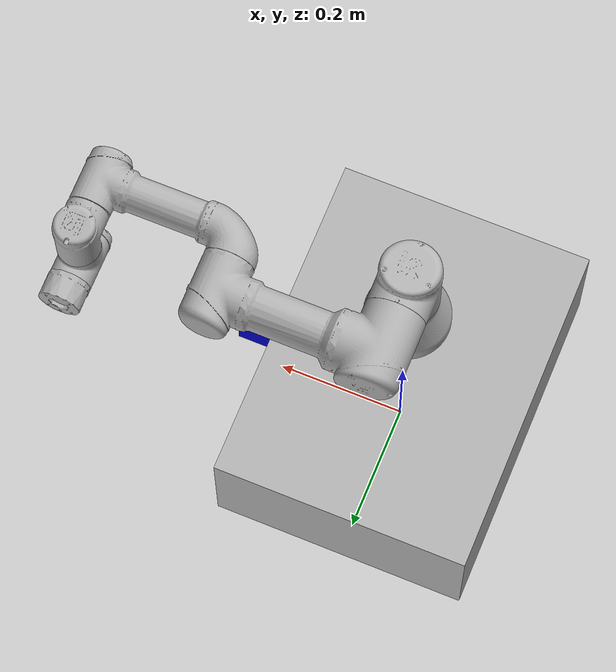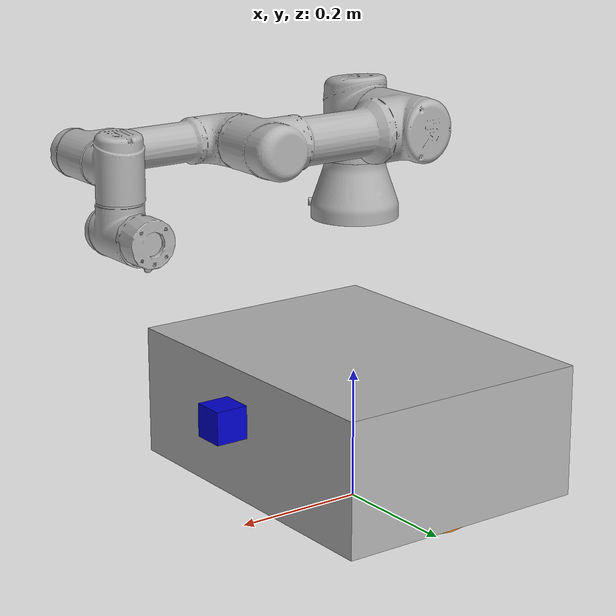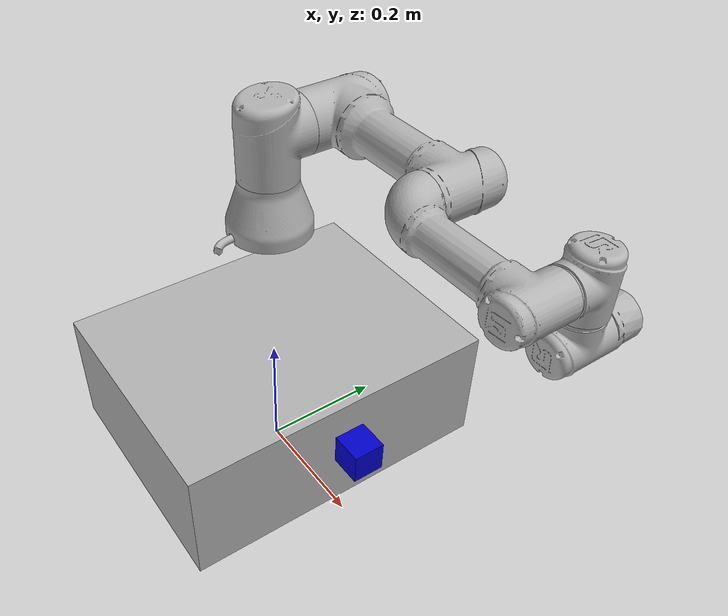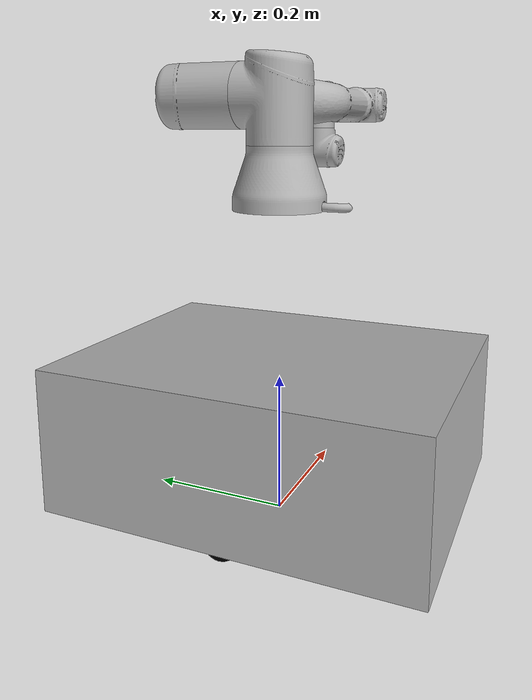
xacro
<?xml version="1.0"?>
<robot name="differential_wheeled_robot" xmlns:xacro="http://www.ros.org/wiki/xacro">

  <xacro:include filename="$(find dashur_description)/urdf/dashgo_wheel.xacro" />
	<xacro:include filename="$(find dashur_description)/urdf/ur3_arm.xacro" />

<!-- Defining the colors used in this robot -->
  <material name="Black">
    <color rgba="0.0 0.0 0.0 1.0"/>
  </material>

  <material name="Red">
    <color rgba="0.8 0.0 0.0 1.0"/>
  </material>

  <material name="White">
    <color rgba="1.0 1.0 1.0 1.0"/>
  </material>

  <material name="Blue">
    <color rgba="0.0 0.0 0.8 1.0"/>
  </material>

  <material name="Orange">
    <color rgba="1.0 0.55 0.0 1.0"/>
  </material>

  <material name="Grey">
    <color rgba="0.7 0.7 0.7 1.0"/>
  </material>

  <!-- PROPERTY LIST -->
  <!--All units in m-kg-s-radians unit system -->
	<property name="base_x" value="0.40" />
	<property name="base_y" value="0.52" />
	<property name="base_length" value="0.20" />
  <property name="M_PI" value="3.1415926535897931" />
  <property name="M_PI_2" value="1.570796327" />
  <property name="DEG_TO_RAD" value="0.017453293" />

  <!-- Main body radius and height -->
  <!-- Main Body Cylinder base   -->
  <property name="base_height" value="0.02" />
  <property name="base_radius" value="0.15" />
  <property name="base_mass" value="5" /> <!-- in kg-->

  <!-- caster wheel radius and height -->
  <!-- caster wheel mass -->
  <property name="caster_f_height" value="0.04" />
  <property name="caster_f_radius" value="0.025" />
  <property name="caster_f_mass" value="0.5" /> <!-- in kg-->

  <!-- caster wheel radius and height -->
  <!-- caster wheel mass -->
  <property name="caster_b_height" value="0.04" />
  <property name="caster_b_radius" value="0.025" />
  <property name="caster_b_mass" value="0.5" /> <!-- in kg-->

  <!-- Wheels -->

  <property name="wheel_mass" value="2.5" /> --> <!-- in kg-->

  <property name="base_x_origin_to_wheel_origin" value="0" />
  <property name="base_y_origin_to_wheel_origin" value="0.21" />
  <property name="base_z_origin_to_wheel_origin" value="-0.038" />

  <!-- Hokuyo Laser scanner -->
  <property name="hokuyo_size" value="0.05" />

  <!-- Macro for calculating inertia of cylinder -->
  <macro name="cylinder_inertia" params="m r h">
    <inertia  ixx="${m*(3*r*r+h*h)/12}" ixy = "0" ixz = "0"
              iyy="${m*(3*r*r+h*h)/12}" iyz = "0"
              izz="${m*r*r/2}" />
  </macro>

  <!-- BASE-FOOTPRINT -->
  <!-- base_footprint is a fictitious link(frame) that is on the ground right below dash_link origin -->
  <link name="base_footprint">
    <inertial>
      <mass value="0.0001" />
      <origin xyz="0 0 0" />
      <inertia ixx="0.001" ixy="0.0" ixz="0.0"
          iyy="0.001" iyz="0.0"
          izz="0.002" />
    </inertial>
    <visual>
        <origin xyz="0 0 0" rpy="0 0 0" />
        <geometry>
            <box size="0.05 0.05 0.001" />
        </geometry>
    </visual>
  </link>

  <gazebo reference="base_footprint">
    <turnGravityOff>false</turnGravityOff>
  </gazebo>

  <joint name="base_footprint_joint" type="fixed">
		<origin xyz="0 0 ${base_length/2 - base_z_origin_to_wheel_origin}" rpy="0 0 0" />
    <parent link="base_footprint"/>
    <child link="dash_link" />
  </joint>

  <!-- BASE-LINK -->
  <!--Actual body/chassis of the robot-->
  <link name="dash_link">
    <inertial>
      <mass value="${base_mass}" />
      <origin xyz="0 0 0" />
      <!--The 3x3 rotational inertia matrix. -->
      <inertia ixx="0.13" ixy="0.0" ixz="0.0"
          iyy="0.083" iyz="0.0"
          izz="0.18" />

    </inertial>
    <visual>
      <origin xyz="0 0 0" rpy="0 0 0" />
      <geometry>
					<box size="${base_x} ${base_y} ${base_length}"/>
      </geometry>
			<material name="Grey" />
    </visual>
    <collision>
      <origin xyz="0 0 0" rpy="0 0 0 " />
      <geometry>

					<box size="${base_x} ${base_y} ${base_length}"/>

      </geometry>
    </collision>
  </link>
  <gazebo reference="dash_link">
    <material>PR2/Grey1</material>
    <turnGravityOff>false</turnGravityOff>
  </gazebo>

<!--Caster front  -->

    <link name="caster_front_link">

    <visual>
      <origin xyz="0 0 0" rpy="${M_PI/2} 0 0" />
      <geometry>
	<sphere radius="${caster_f_radius}" />
      </geometry>
      <material name="Black" />
    </visual>

      <collision>
        <geometry>

	<sphere radius="${caster_f_radius}" />

        </geometry>
			<material name="Black" />
      <origin xyz="0 0 0" rpy="${M_PI/2} 0 0" />
      </collision>
      <inertial>
        <mass value="${caster_f_mass}" />
        <origin xyz="0 0 0" />
        <inertia ixx="0.001" ixy="0.0" ixz="0.0"
                 iyy="0.001" iyz="0.0"
                 izz="0.001" />
      </inertial>
    </link>

 <joint name="caster_front_joint" type="fixed">
      <parent link="dash_link"/>
      <child link="caster_front_link"/>
      <origin xyz="0.155 0.0 -0.093" rpy="${-M_PI/2} 0 0"/>
    </joint>

  <gazebo reference="caster_front_link">
    <turnGravityOff>false</turnGravityOff>
    <material>Gazebo/Black</material>
  </gazebo>

<!--Caster back  -->

    <link name="caster_back_link">

    <visual>
      <origin xyz="0 0 0 " rpy="${M_PI/2} 0 0" />

      <geometry>

	<sphere radius="${caster_b_radius}" />

      </geometry>
      <material name="Black" />
    </visual>

      <collision>
        <geometry>
		<sphere radius="${caster_b_radius}" />
        </geometry>
      <origin xyz="0 0 0 " rpy="${M_PI/2} 0 0" />
      </collision>
      <inertial>
        <mass value="${caster_b_mass}" />
        <origin xyz="0 0 0" />
        <inertia ixx="0.001" ixy="0.0" ixz="0.0"
                 iyy="0.001" iyz="0.0"
                 izz="0.001" />
      </inertial>
    </link>

    <joint name="caster_back_joint" type="fixed">
      <parent link="dash_link"/>
      <child link="caster_back_link"/>
      <origin xyz="-0.175 0.0 -0.093" rpy="${-M_PI/2} 0 0"/>
    </joint>

  <gazebo reference="caster_back_link">
    <turnGravityOff>false</turnGravityOff>
    <material>Gazebo/Black</material>
  </gazebo>

<!-- Wheel Definitions -->

  <wheel fb="front" lr="right" parent="dash_link" translateX="0" translateY="1" flipY="1"/>
  <wheel fb="front" lr="left" parent="dash_link" translateX="0" translateY="-1" flipY="1"/>

  <!-- SENSORS -->

  <!-- hokuyo -->

  <link name="hokuyo_link">
    <visual>
      <origin xyz="0 0 0" rpy="0 0 0" />
      <geometry>
        <box size="${hokuyo_size} ${hokuyo_size} ${hokuyo_size}"/>
      </geometry>
      <material name="Blue" />
    </visual>
  </link>
  <joint name="hokuyo_joint" type="fixed">
		<origin xyz="${base_y/2 - hokuyo_size/2} 0 ${base_height+hokuyo_size/4}" rpy="0 0 0" />
    <parent link="dash_link"/>
    <child link="hokuyo_link" />
  </joint>
  <gazebo reference="hokuyo_link">
    <material>Gazebo/Blue</material>
    <turnGravityOff>false</turnGravityOff>
    <sensor type="ray" name="head_hokuyo_sensor">
      <pose>${hokuyo_size/2} 0 0 0 0 0</pose>
      <visualize>false</visualize>
      <update_rate>40</update_rate>
      <ray>
        <scan>
          <horizontal>
            <samples>720</samples>
            <resolution>1</resolution>
            <min_angle>-1.570796</min_angle>
            <max_angle>1.570796</max_angle>
          </horizontal>
        </scan>
        <range>
          <min>0.10</min>
          <max>10.0</max>
          <resolution>0.001</resolution>
        </range>
      </ray>
      <plugin name="gazebo_ros_head_hokuyo_controller" filename="libgazebo_ros_laser.so">
        <topicName>/scan</topicName>
        <frameName>hokuyo_link</frameName>
      </plugin>
    </sensor>
  </gazebo>

  <!-- Differential drive controller  -->
  <gazebo>
    <plugin name="differential_drive_controller" filename="libgazebo_ros_diff_drive.so">

      <rosDebugLevel>Debug</rosDebugLevel>
      <publishWheelTF>false</publishWheelTF>
      <robotNamespace>/</robotNamespace>
      <publishTf>1</publishTf>
      <publishWheelJointState>false</publishWheelJointState>
      <alwaysOn>true</alwaysOn>
      <updateRate>100.0</updateRate>
      <leftJoint>front_left_wheel_joint</leftJoint>
      <rightJoint>front_right_wheel_joint</rightJoint>
      <wheelSeparation>${2*base_radius}</wheelSeparation>
      <wheelDiameter>${2*wheel_radius}</wheelDiameter>
      <broadcastTF>1</broadcastTF>
      <wheelTorque>30</wheelTorque>
      <wheelAcceleration>1.8</wheelAcceleration>
      <commandTopic>cmd_vel</commandTopic>
      <odometryFrame>odom</odometryFrame>
      <odometryTopic>odom</odometryTopic>
      <robotBaseFrame>base_footprint</robotBaseFrame>

    </plugin>
  </gazebo>

</robot>

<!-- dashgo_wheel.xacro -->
<robot name="wheel" xmlns:xacro="http://www.ros.org/wiki/xacro">

  <!-- Wheels -->
  <property name="wheel_radius" value="0.0801" />
  <property name="wheel_height" value="0.046" />
  <property name="wheel_mass" value="2.5" /> <!-- in kg-->

  <property name="base_x_origin_to_wheel_origin" value="0" />
  <property name="base_y_origin_to_wheel_origin" value="0.21" />
  <property name="base_z_origin_to_wheel_origin" value="-0.038" />

  <macro name="cylinder_inertia" params="m r h">
    <inertia  ixx="${m*(3*r*r+h*h)/12}" ixy = "0" ixz = "0"
              iyy="${m*(3*r*r+h*h)/12}" iyz = "0"
              izz="${m*r*r/2}" />
  </macro>

  <macro name="box_inertia" params="m x y h">
    <inertia  ixx="${m*(y*y+h*h)/12}" ixy = "0" ixz = "0"
              iyy="${m*(x*x+h*h)/12}" iyz = "0"
              izz="${m*(x*x+y*y)/12}" />
  </macro>

  <xacro:macro name="wheel" params="fb lr parent translateX translateY flipY"> <!--fb : front, back ; lr: left, right -->
    <link name="${fb}_${lr}_wheel">
      <visual>
        <origin xyz="0 0 0" rpy="${flipY*M_PI/2} 0  0 " />
        <geometry>
          <cylinder length="${wheel_height}" radius="${wheel_radius}" />
        </geometry>
        <material name="Orange" />
      </visual>
      <collision>
        <origin xyz="0 0 0" rpy="${flipY*M_PI/2} 0 0 " />
        <geometry>
          <cylinder length="${wheel_height}" radius="${wheel_radius}" />
        </geometry>
      </collision>
      <inertial>
        <mass value="${wheel_mass}" />
        <origin xyz="0 0 0" />
        <cylinder_inertia  m="${wheel_mass}" r="${wheel_radius}" h="${wheel_height}" />
      </inertial>
    </link>

    <gazebo reference="${fb}_${lr}_wheel">
      <mu1 value="1.0"/>
      <mu2 value="1.0"/>
      <kp  value="10000000.0" />
      <kd  value="1.0" />
      <fdir1 value="1 0 0"/>
      <material>Gazebo/Orange</material>
      <turnGravityOff>false</turnGravityOff>
    </gazebo>

    <joint name="${fb}_${lr}_wheel_joint" type="continuous">
      <parent link="${parent}"/>
      <child link="${fb}_${lr}_wheel"/>
      <origin xyz="${base_x_origin_to_wheel_origin} ${translateY * base_y_origin_to_wheel_origin} ${base_z_origin_to_wheel_origin}" rpy="0 0 0" />
      <axis xyz="0 1 0" rpy="0  0" />
      <limit effort="100" velocity="100"/>
      <joint_properties damping="0.0" friction="0.0"/>
    </joint>

    <!-- Transmission is important to link the joints and the controller -->
    <transmission name="${fb}_${lr}_wheel_joint_trans">
      <type>transmission_interface/SimpleTransmission</type>
      <joint name="${fb}_${lr}_wheel_joint" />
      <actuator name="${fb}_${lr}_wheel_joint_motor">
        <hardwareInterface>EffortJointInterface</hardwareInterface>
        <mechanicalReduction>1</mechanicalReduction>
      </actuator>
    </transmission>

  </xacro:macro>
</robot>

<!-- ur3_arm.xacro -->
<robot xmlns:xacro="http://www.ros.org/wiki/xacro">

  <!-- common stuff -->
	<xacro:include filename="$(find ur_description)/urdf/common.gazebo.xacro" />

  <!-- ur3 -->
  <xacro:include filename="$(find dashur_description)/urdf/ur3.urdf.xacro" />

  <!-- arm -->
  <xacro:ur3_robot prefix="" joint_limited="false"/>

  <joint name="dashgo_joint" type="fixed">
    <parent link="dash_link" />
    <child link = "base_link" />
    <origin xyz="0.0 0.0 0.3" rpy="0.0 0.0 0.0" />
  </joint>

</robot>

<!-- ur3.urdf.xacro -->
<robot xmlns:xacro="http://www.ros.org/wiki/xacro">

<!--
  Author: Felix Messmer
-->

  <xacro:include filename="$(find ur_description)/urdf/ur.transmission.xacro" />
  <xacro:include filename="$(find ur_description)/urdf/ur.gazebo.xacro" />

  <property name="pi" value="3.14159265" />

  <!-- Inertia parameters -->
  <property name="base_mass" value="0.02" />  <!-- This mass might be incorrect -->
  <property name="shoulder_mass" value="0.02" />
  <property name="upper_arm_mass" value="0.0342" />
  <property name="forearm_mass" value="0.0126" />
  <property name="wrist_1_mass" value="0.008" />
  <property name="wrist_2_mass" value="0.008" />
  <property name="wrist_3_mass" value="0.0035" />

  <property name="shoulder_cog" value="0.0 -0.02 0.0" />
  <property name="upper_arm_cog" value="0.13 0.0 0.1157" />
  <property name="forearm_cog" value="0.05 0.0 0.0238" />
  <property name="wrist_1_cog" value="0.0 0.0 0.01" />
  <property name="wrist_2_cog" value="0.0 0.0 0.01" />
  <property name="wrist_3_cog" value="0.0 0.0 -0.02" />

  <!-- Kinematic model -->
  <!-- Properties from urcontrol.conf -->
  <property name="ur3_d1" value="0.1519" />
  <property name="ur3_a2" value="-0.24365" />
  <property name="ur3_a3" value="-0.21325" />
  <property name="ur3_d4" value="0.11235" />
  <property name="ur3_d5" value="0.08535" />
  <property name="ur3_d6" value="0.0819" />

  <!-- Arbitrary offsets for shoulder/elbow joints -->
  <property name="shoulder_offset" value="0.1198" />  <!-- measured from model -->
  <property name="elbow_offset" value="-0.0925" /> <!-- measured from model -->

  <!-- link lengths used in model -->
  <property name="shoulder_height" value="${ur3_d1}" />
  <property name="upper_arm_length" value="${-ur3_a2}" />
  <property name="forearm_length" value="${-ur3_a3}" />
  <property name="wrist_1_length" value="${ur3_d4 - elbow_offset - shoulder_offset}" />
  <property name="wrist_2_length" value="${ur3_d5}" />
  <property name="wrist_3_length" value="${ur3_d6}" />

  <xacro:macro name="cylinder_inertial" params="radius length mass *origin">
    <inertial>
      <mass value="${mass}" />
      <insert_block name="origin" />
      <inertia ixx="${0.0833333 * mass * (3 * radius * radius + length * length)}" ixy="0.0" ixz="0.0"
        iyy="${0.0833333 * mass * (3 * radius * radius + length * length)}" iyz="0.0"
        izz="${0.5 * mass * radius * radius}" />
    </inertial>
  </xacro:macro>

  <xacro:macro name="ur3_robot" params="prefix joint_limited">

    <link name="${prefix}base_link" >
      <visual>
        <geometry>
          <mesh filename="package://ur_description/meshes/ur3/visual/base.dae"/>
        </geometry>
        <material name="LightGrey">
          <color rgba="0.7 0.7 0.7 1.0"/>
        </material>
      </visual>
      <collision>
        <geometry>
          <mesh filename="package://ur_description/meshes/ur3/collision/base.stl"/>
        </geometry>
      </collision>
      <xacro:cylinder_inertial radius="0.075" length="0.038" mass="${base_mass}">
        <origin xyz="0.0 0.0 0.0" rpy="0 0 0" />
      </xacro:cylinder_inertial>
    </link>

    <joint name="${prefix}shoulder_pan_joint" type="revolute">
      <parent link="${prefix}base_link" />
      <child link = "${prefix}shoulder_link" />
      <origin xyz="0.0 0.0 ${shoulder_height}" rpy="0.0 0.0 0.0" />
      <axis xyz="0 0 1" />
      <xacro:unless value="${joint_limited}">
        <limit lower="${-2.0 * pi}" upper="${2.0 * pi}" effort="330.0" velocity="2.16"/>
      </xacro:unless>
      <xacro:if value="${joint_limited}">
        <limit lower="${-pi}" upper="${pi}" effort="330.0" velocity="2.16"/>
      </xacro:if>
      <dynamics damping="0.0" friction="0.0"/>
    </joint>

    <link name="${prefix}shoulder_link">
      <visual>
        <geometry>
          <mesh filename="package://ur_description/meshes/ur3/visual/shoulder.dae"/>
        </geometry>
        <material name="LightGrey">
          <color rgba="0.7 0.7 0.7 1.0"/>
        </material>
      </visual>
      <collision>
        <geometry>
          <mesh filename="package://ur_description/meshes/ur3/collision/shoulder.stl"/>
        </geometry>
      </collision>
      <xacro:cylinder_inertial radius="0.075" length="0.178" mass="${shoulder_mass}">
        <origin xyz="0.0 0.0 0.0" rpy="0 0 0" />
      </xacro:cylinder_inertial>
    </link>

    <joint name="${prefix}shoulder_lift_joint" type="revolute">
      <parent link="${prefix}shoulder_link" />
      <child link = "${prefix}upper_arm_link" />
      <origin xyz="0.0 ${shoulder_offset} 0.0" rpy="0.0 ${pi / 2.0} 0.0" />
      <axis xyz="0 1 0" />
      <xacro:unless value="${joint_limited}">
        <limit lower="${-2.0 * pi}" upper="${2.0 * pi}" effort="330.0" velocity="2.16"/>
      </xacro:unless>
      <xacro:if value="${joint_limited}">
        <limit lower="${-pi}" upper="${pi}" effort="330.0" velocity="2.16"/>
      </xacro:if>
      <dynamics damping="0.0" friction="0.0"/>
    </joint>

    <link name="${prefix}upper_arm_link">
      <visual>
        <geometry>
          <mesh filename="package://ur_description/meshes/ur3/visual/upperarm.dae"/>
        </geometry>
        <material name="LightGrey">
          <color rgba="0.7 0.7 0.7 1.0"/>
        </material>
      </visual>
      <collision>
        <geometry>
          <mesh filename="package://ur_description/meshes/ur3/collision/upperarm.stl"/>
        </geometry>
      </collision>
      <xacro:cylinder_inertial radius="0.075" length="${-ur3_a2}" mass="${upper_arm_mass}">
        <origin xyz="0.0 0.0 ${-ur3_a2/2.0}" rpy="0 0 0" />
      </xacro:cylinder_inertial>
    </link>

    <joint name="${prefix}elbow_joint" type="revolute">
      <parent link="${prefix}upper_arm_link" />
      <child link = "${prefix}forearm_link" />
      <origin xyz="0.0 ${elbow_offset} ${upper_arm_length}" rpy="0.0 0.0 0.0" />
      <axis xyz="0 1 0" />
      <xacro:unless value="${joint_limited}">
        <limit lower="${-2.0 * pi}" upper="${2.0 * pi}" effort="150.0" velocity="3.15"/>
      </xacro:unless>
      <xacro:if value="${joint_limited}">
        <limit lower="${-pi}" upper="${pi}" effort="150.0" velocity="3.15"/>
      </xacro:if>
      <dynamics damping="0.0" friction="0.0"/>
    </joint>

    <link name="${prefix}forearm_link">
      <visual>
         <geometry>
          <mesh filename="package://ur_description/meshes/ur3/visual/forearm.dae"/>
        </geometry>
        <material name="LightGrey">
          <color rgba="0.7 0.7 0.7 1.0"/>
        </material>
      </visual>
      <collision>
        <geometry>
          <mesh filename="package://ur_description/meshes/ur3/collision/forearm.stl"/>
        </geometry>
      </collision>
      <xacro:cylinder_inertial radius="0.075" length="${-ur3_a3}" mass="${forearm_mass}">
        <origin xyz="0.0 0.0 ${-ur3_a3/2.0}" rpy="0 0 0" />
      </xacro:cylinder_inertial>
    </link>

    <joint name="${prefix}wrist_1_joint" type="revolute">
      <parent link="${prefix}forearm_link" />
      <child link = "${prefix}wrist_1_link" />
      <origin xyz="0.0 0.0 ${forearm_length}" rpy="0.0 ${pi / 2.0} 0.0" />
      <axis xyz="0 1 0" />
      <xacro:unless value="${joint_limited}">
        <limit lower="${-2.0 * pi}" upper="${2.0 * pi}" effort="54.0" velocity="3.2"/>
      </xacro:unless>
      <xacro:if value="${joint_limited}">
        <limit lower="${-pi}" upper="${pi}" effort="54.0" velocity="3.2"/>
      </xacro:if>
      <dynamics damping="0.0" friction="0.0"/>
    </joint>

    <link name="${prefix}wrist_1_link">
      <visual>
        <geometry>
          <mesh filename="package://ur_description/meshes/ur3/visual/wrist1.dae"/>
        </geometry>
        <material name="LightGrey">
          <color rgba="0.7 0.7 0.7 1.0"/>
        </material>
      </visual>
      <collision>
        <geometry>
          <mesh filename="package://ur_description/meshes/ur3/collision/wrist1.stl"/>
        </geometry>
      </collision>
      <xacro:cylinder_inertial radius="0.075" length="0.12" mass="${wrist_1_mass}">
        <origin xyz="0.0 0.0 0.0" rpy="0 0 0" />
      </xacro:cylinder_inertial>
    </link>

    <joint name="${prefix}wrist_2_joint" type="revolute">
      <parent link="${prefix}wrist_1_link" />
      <child link = "${prefix}wrist_2_link" />
      <origin xyz="0.0 ${wrist_1_length} 0.0" rpy="0.0 0.0 0.0" />
      <axis xyz="0 0 1" />
      <xacro:unless value="${joint_limited}">
        <limit lower="${-2.0 * pi}" upper="${2.0 * pi}" effort="54.0" velocity="3.2"/>
      </xacro:unless>
      <xacro:if value="${joint_limited}">
        <limit lower="${-pi}" upper="${pi}" effort="54.0" velocity="3.2"/>
      </xacro:if>
      <dynamics damping="0.0" friction="0.0"/>
    </joint>

    <link name="${prefix}wrist_2_link">
      <visual>
        <geometry>
          <mesh filename="package://ur_description/meshes/ur3/visual/wrist2.dae"/>
        </geometry>
        <material name="LightGrey">
          <color rgba="0.7 0.7 0.7 1.0"/>
        </material>
      </visual>
      <collision>
        <geometry>
          <mesh filename="package://ur_description/meshes/ur3/collision/wrist2.stl"/>
        </geometry>
      </collision>
      <xacro:cylinder_inertial radius="0.075" length="0.12" mass="${wrist_2_mass}">
        <origin xyz="0.0 0.0 0.0" rpy="0 0 0" />
      </xacro:cylinder_inertial>
    </link>

    <joint name="${prefix}wrist_3_joint" type="revolute">
      <parent link="${prefix}wrist_2_link" />
      <child link = "${prefix}wrist_3_link" />
      <origin xyz="0.0 0.0 ${wrist_2_length}" rpy="0.0 0.0 0.0" />
      <axis xyz="0 1 0" />
      <xacro:unless value="${joint_limited}">
        <limit lower="${-2.0 * pi}" upper="${2.0 * pi}" effort="54.0" velocity="3.2"/>
      </xacro:unless>
      <xacro:if value="${joint_limited}">
        <limit lower="${-pi}" upper="${pi}" effort="54.0" velocity="3.2"/>
      </xacro:if>
      <dynamics damping="0.0" friction="0.0"/>
    </joint>

    <link name="${prefix}wrist_3_link">
      <visual>
        <geometry>
          <mesh filename="package://ur_description/meshes/ur3/visual/wrist3.dae"/>
        </geometry>
        <material name="LightGrey">
          <color rgba="0.7 0.7 0.7 1.0"/>
        </material>
      </visual>
      <collision>
        <geometry>
          <mesh filename="package://ur_description/meshes/ur3/collision/wrist3.stl"/>
        </geometry>
      </collision>
      <xacro:cylinder_inertial radius="0.075" length="0.12" mass="${wrist_3_mass}">
        <origin xyz="0.0 0.0 0.0" rpy="0 0 0" />
      </xacro:cylinder_inertial>
    </link>

    <joint name="${prefix}ee_fixed_joint" type="fixed">
      <parent link="${prefix}wrist_3_link" />
      <child link = "${prefix}ee_link" />
      <origin xyz="0.0 ${wrist_3_length} 0.0" rpy="0.0 0.0 ${pi/2.0}" />
    </joint>

    <link name="${prefix}ee_link">
      <collision>
        <geometry>
          <box size="0.01 0.01 0.01"/>
        </geometry>
        <origin rpy="0 0 0" xyz="-0.01 0 0"/>
      </collision>
    </link>

    <xacro:ur_arm_transmission prefix="${prefix}" />
    <xacro:ur_arm_gazebo prefix="${prefix}" />

    <!-- ROS base_link to UR 'Base' Coordinates transform -->
    <link name="${prefix}base"/>
    <joint name="${prefix}base_link-base_fixed_joint" type="fixed">
      <!-- NOTE: this rotation is only needed as long as base_link itself is
                 not corrected wrt the real robot (ie: rotated over 180
                 degrees)
      -->
      <origin xyz="0 0 0" rpy="0 0 ${-pi}"/>
      <parent link="${prefix}base_link"/>
      <child link="${prefix}base"/>
    </joint>

    <!-- Frame coincident with all-zeros TCP on UR controller -->
    <link name="${prefix}tool0"/>
    <joint name="${prefix}wrist_3_link-tool0_fixed_joint" type="fixed">
      <origin xyz="0 ${wrist_3_length} 0" rpy="${pi/-2.0} 0 0"/>
      <parent link="${prefix}wrist_3_link"/>
      <child link="${prefix}tool0"/>
    </joint>

  </xacro:macro>
</robot>
